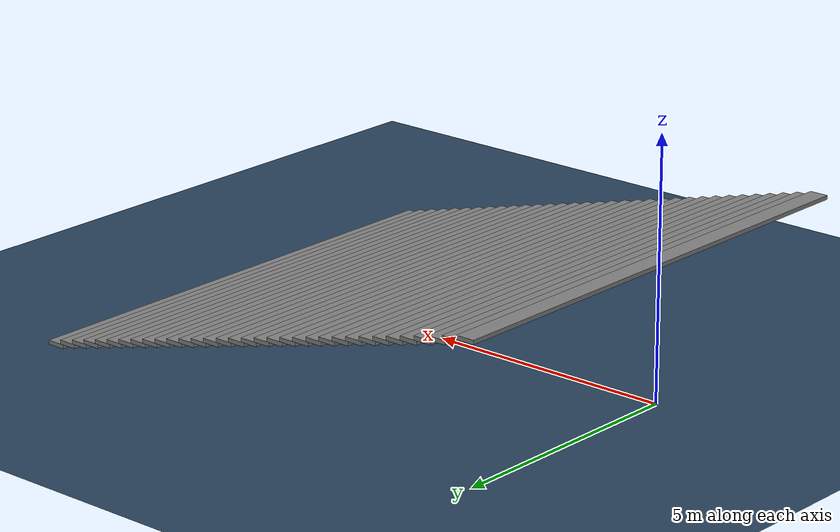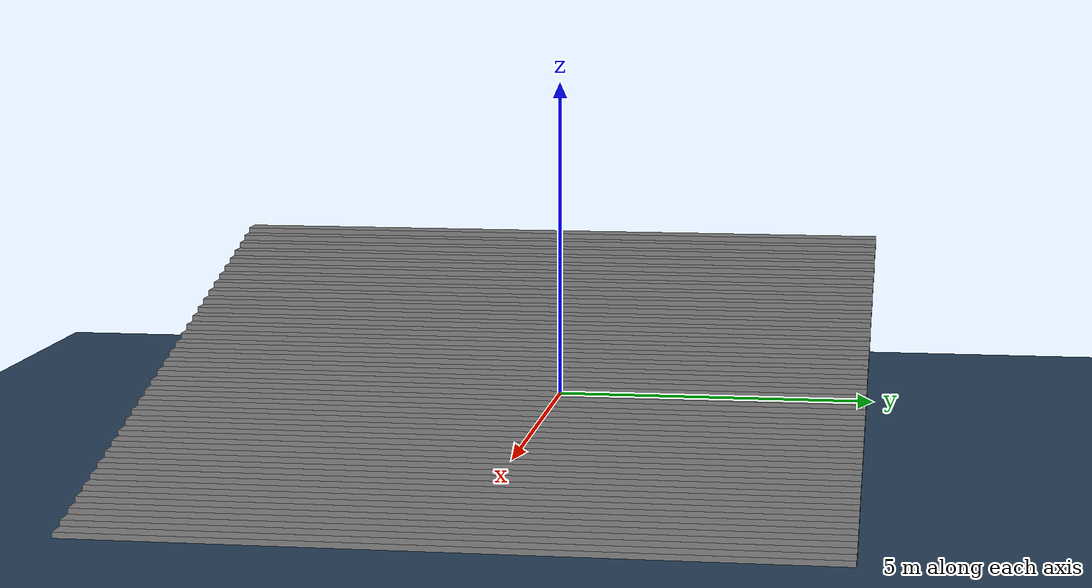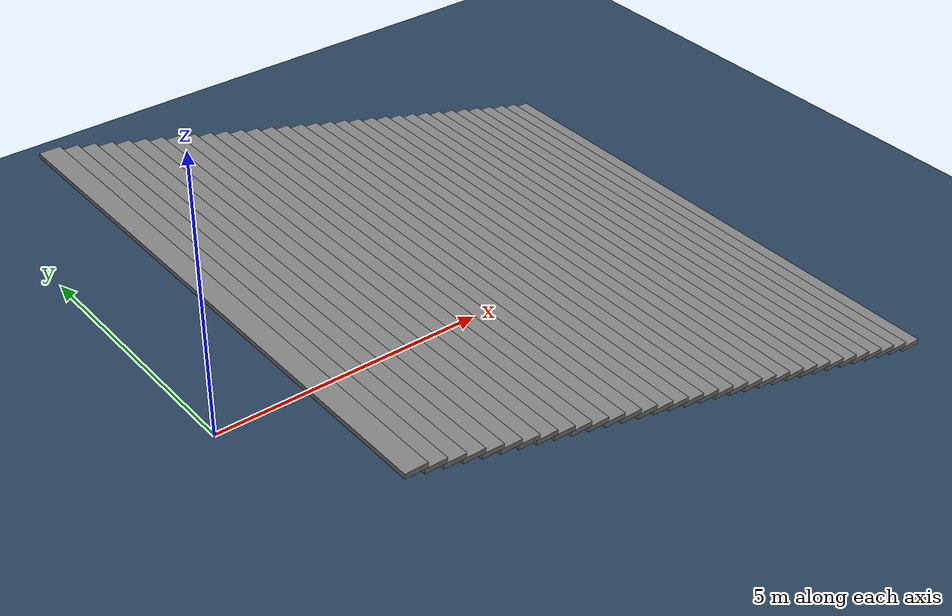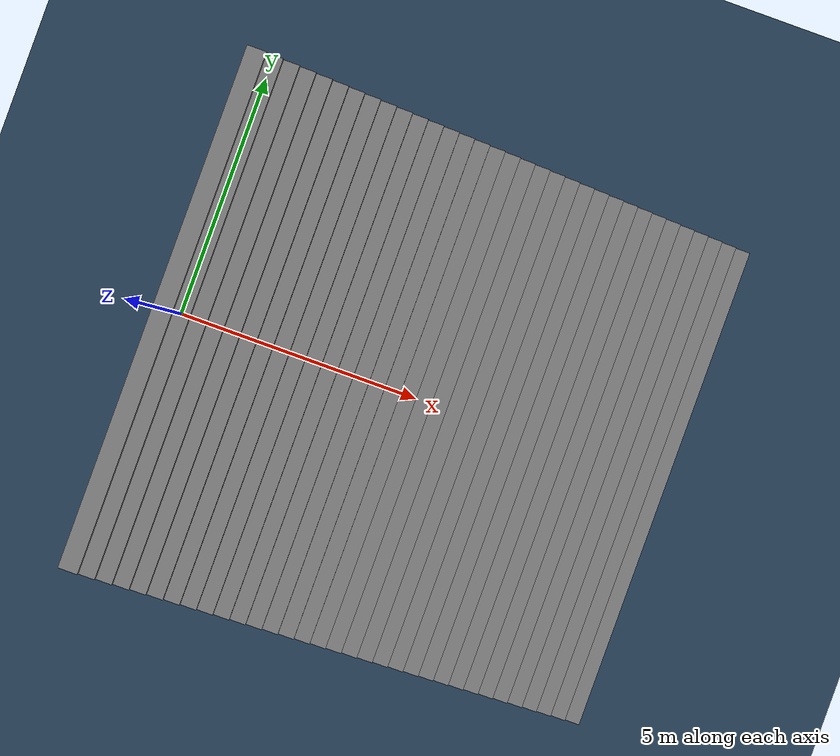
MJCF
<mujoco model="stairs_down_1">
  <!-- Terrain Type: stairs_down, Level: 1, Stairs step height: 0.0800 -->
  <statistic center="0 0 0.1" extent="0.8" />
  <visual>
    <headlight diffuse="0.6 0.6 0.6" ambient="0.3 0.3 0.3" specular="0 0 0" />
    <rgba haze="0.15 0.25 0.35 1" />
    <global azimuth="-130" elevation="-20" />
  </visual>
  <asset>
    <texture type="skybox" builtin="gradient" rgb1="0.3 0.5 0.7" rgb2="0 0 0" width="512" height="3072" />
    <texture type="2d" name="groundplane" builtin="checker" mark="edge" rgb1="0.2 0.3 0.4" rgb2="0.1 0.2 0.3" markrgb="0.8 0.8 0.8" width="300" height="300" />
    <material name="groundplane" texture="groundplane" texuniform="true" texrepeat="5 5" reflectance="0.0" />
  </asset>
  <worldbody>
    <light pos="0 0 1.5" dir="0 0 -1" directional="true" />
    <geom name="floor" size="0 0 0.05" type="plane" material="groundplane" />
    <geom pos="0.155 0.0 2.6" type="box" size="0.186 5.0 0.04" quat="1.0 0.0 0.0 0.0" />
    <geom pos="0.46499999999999997 0.0 2.52" type="box" size="0.186 5.0 0.04" quat="1.0 0.0 0.0 0.0" />
    <geom pos="0.7749999999999999 0.0 2.44" type="box" size="0.186 5.0 0.04" quat="1.0 0.0 0.0 0.0" />
    <geom pos="1.085 0.0 2.36" type="box" size="0.186 5.0 0.04" quat="1.0 0.0 0.0 0.0" />
    <geom pos="1.395 0.0 2.28" type="box" size="0.186 5.0 0.04" quat="1.0 0.0 0.0 0.0" />
    <geom pos="1.705 0.0 2.1999999999999997" type="box" size="0.186 5.0 0.04" quat="1.0 0.0 0.0 0.0" />
    <geom pos="2.015 0.0 2.1199999999999997" type="box" size="0.186 5.0 0.04" quat="1.0 0.0 0.0 0.0" />
    <geom pos="2.325 0.0 2.0399999999999996" type="box" size="0.186 5.0 0.04" quat="1.0 0.0 0.0 0.0" />
    <geom pos="2.6350000000000002 0.0 1.9599999999999995" type="box" size="0.186 5.0 0.04" quat="1.0 0.0 0.0 0.0" />
    <geom pos="2.9450000000000003 0.0 1.8799999999999994" type="box" size="0.186 5.0 0.04" quat="1.0 0.0 0.0 0.0" />
    <geom pos="3.2550000000000003 0.0 1.7999999999999994" type="box" size="0.186 5.0 0.04" quat="1.0 0.0 0.0 0.0" />
    <geom pos="3.5650000000000004 0.0 1.7199999999999993" type="box" size="0.186 5.0 0.04" quat="1.0 0.0 0.0 0.0" />
    <geom pos="3.8750000000000004 0.0 1.6399999999999992" type="box" size="0.186 5.0 0.04" quat="1.0 0.0 0.0 0.0" />
    <geom pos="4.1850000000000005 0.0 1.5599999999999992" type="box" size="0.186 5.0 0.04" quat="1.0 0.0 0.0 0.0" />
    <geom pos="4.495 0.0 1.479999999999999" type="box" size="0.186 5.0 0.04" quat="1.0 0.0 0.0 0.0" />
    <geom pos="4.805 0.0 1.399999999999999" type="box" size="0.186 5.0 0.04" quat="1.0 0.0 0.0 0.0" />
    <geom pos="5.114999999999999 0.0 1.319999999999999" type="box" size="0.186 5.0 0.04" quat="1.0 0.0 0.0 0.0" />
    <geom pos="5.424999999999999 0.0 1.2399999999999989" type="box" size="0.186 5.0 0.04" quat="1.0 0.0 0.0 0.0" />
    <geom pos="5.7349999999999985 0.0 1.1599999999999988" type="box" size="0.186 5.0 0.04" quat="1.0 0.0 0.0 0.0" />
    <geom pos="6.044999999999998 0.0 1.0799999999999987" type="box" size="0.186 5.0 0.04" quat="1.0 0.0 0.0 0.0" />
    <geom pos="6.354999999999998 0.0 0.9999999999999988" type="box" size="0.186 5.0 0.04" quat="1.0 0.0 0.0 0.0" />
    <geom pos="6.664999999999997 0.0 0.9199999999999988" type="box" size="0.186 5.0 0.04" quat="1.0 0.0 0.0 0.0" />
    <geom pos="6.974999999999997 0.0 0.8399999999999989" type="box" size="0.186 5.0 0.04" quat="1.0 0.0 0.0 0.0" />
    <geom pos="7.284999999999997 0.0 0.7599999999999989" type="box" size="0.186 5.0 0.04" quat="1.0 0.0 0.0 0.0" />
    <geom pos="7.594999999999996 0.0 0.6799999999999989" type="box" size="0.186 5.0 0.04" quat="1.0 0.0 0.0 0.0" />
    <geom pos="7.904999999999996 0.0 0.599999999999999" type="box" size="0.186 5.0 0.04" quat="1.0 0.0 0.0 0.0" />
    <geom pos="8.214999999999996 0.0 0.519999999999999" type="box" size="0.186 5.0 0.04" quat="1.0 0.0 0.0 0.0" />
    <geom pos="8.524999999999997 0.0 0.439999999999999" type="box" size="0.186 5.0 0.04" quat="1.0 0.0 0.0 0.0" />
    <geom pos="8.834999999999997 0.0 0.359999999999999" type="box" size="0.186 5.0 0.04" quat="1.0 0.0 0.0 0.0" />
    <geom pos="9.144999999999998 0.0 0.27999999999999897" type="box" size="0.186 5.0 0.04" quat="1.0 0.0 0.0 0.0" />
    <geom pos="9.454999999999998 0.0 0.19999999999999896" type="box" size="0.186 5.0 0.04" quat="1.0 0.0 0.0 0.0" />
    <geom pos="9.764999999999999 0.0 0.11999999999999895" type="box" size="0.186 5.0 0.04" quat="1.0 0.0 0.0 0.0" />
    <geom pos="10.075 0.0 0.03999999999999895" type="box" size="0.186 5.0 0.04" quat="1.0 0.0 0.0 0.0" />
  </worldbody>
</mujoco>
